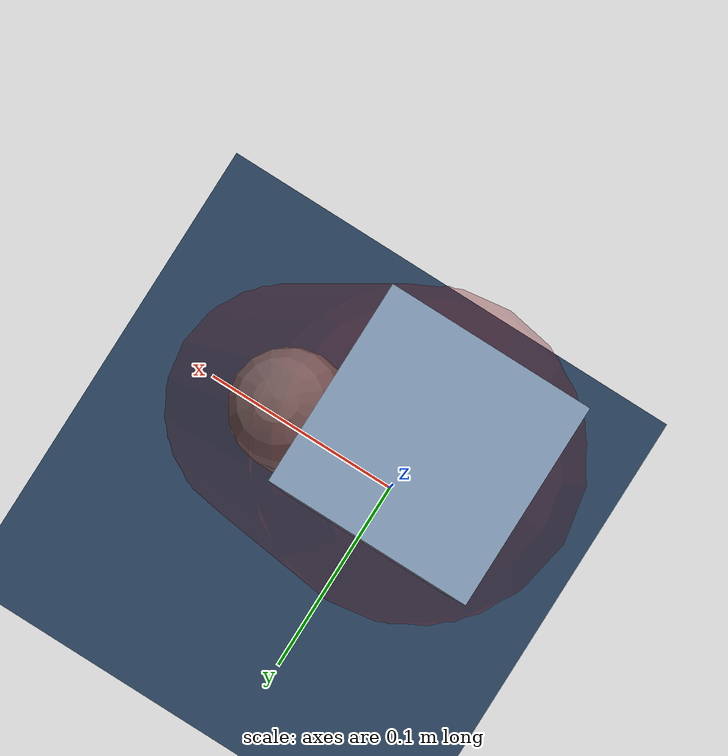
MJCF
<mujoco model="Hopper2D">
	<compiler inertiafromgeom="true" angle="radian" />
	<option timestep="0.001" integrator="implicit" cone="elliptic" solver="Newton" tolerance="1e-10" />

	<default>
		<geom contype="1" conaffinity="1" condim="3" friction="2 0.005 0.0001" solref="0.005 1" />
		<joint limited="true" damping="0.1" />
	</default>

	<asset>
		<texture name="skybox" type="skybox" builtin="gradient" rgb1=".4 .6 .8" rgb2="0 0 0" width="800" height="800" />
		<texture name="grid" type="2d" builtin="checker" rgb1=".1 .2 .3" rgb2=".2 .3 .4" width="300" height="300" mark="edge" markrgb=".2 .3 .4" />
		<material name="ground" texture="grid" texrepeat="1 1" texuniform="true" reflectance="0.1" />
		<material name="leg" rgba="0.5 0.6 0.7 1" />
	</asset>

	<worldbody>

		<geom name="floor" type="plane" size="5 5 0.25" material="ground" />

		<light directional="false" diffuse="0.8 0.8 0.8" specular="0.3 0.3 0.3" pos="0 0 2" dir="0 0 -1" />
		<light mode="targetbodycom" target="base" directional="false" diffuse="0.8 0.8 0.8" specular="0.3 0.3 0.3" pos="0 0 2" dir="0 0 -1" />

		<camera name="fixed" pos="0 -2 1" xyaxes="1 0 0 0 0 1" />
		<camera name="tracking" mode="trackcom" pos="0 -3 1" />

		<body name="root" pos="0 0 0.5496368644556657">
			<joint name="slide_x" type="slide" axis="1 0 0" range="-100 100" />
			<joint name="slide_z" type="slide" axis="0 0 1" range="0 10" />

			<body name="base" pos="0 0 0">
				<geom name="torso" type="box" size="0.03 0.03 0.1" mass="2.267" material="leg" />

				<body name="link1" pos="0 0 0" euler="0 1.408530466309334 0">
					<joint type="hinge" axis="0 -1 0" pos="0 0 0" name="hinge1" limited="true" range="-3.14 3.14" stiffness="0" damping="0.1" />
					<geom name="thigh" type="capsule" fromto="0 0 0 0.322085710666649 0 0" size="0.05" rgba="0.5 0 0 0.3" mass="1.0489399898666172" />

					<body name="link2" pos="0.322085710666649 0 0" euler="0 0.38310176733035317 0">
						<joint type="hinge" axis="0 -1 0" pos="0 0 0" name="hinge2" limited="true" range="-3.14 3.14" stiffness="0" damping="0.1" />
						<geom name="shank" type="capsule" fromto="0 0 0 0.2375511537890167 0 0" size="0.025" mass="0.43224092303121336" />

					</body>
				</body>
			</body>
		</body>
	</worldbody>

	<actuator>
		<motor name="torque1" joint="hinge1" ctrlrange="-36.55886807373649 36.55886807373649" ctrllimited="true" gear="1" />
		<motor name="torque2" joint="hinge2" ctrlrange="-128.8684218042924 128.8684218042924" ctrllimited="true" gear="1" />
	</actuator>
</mujoco>
